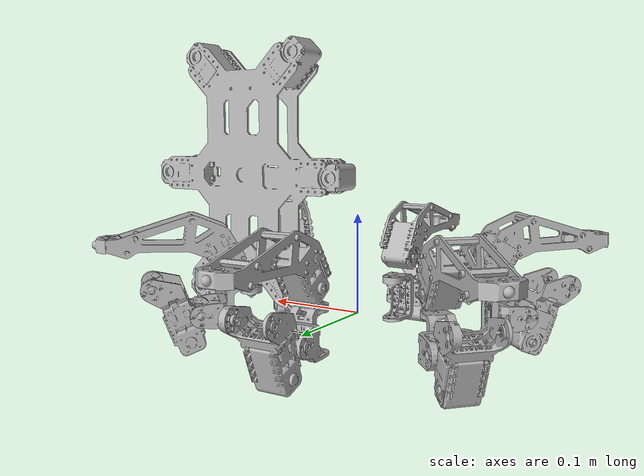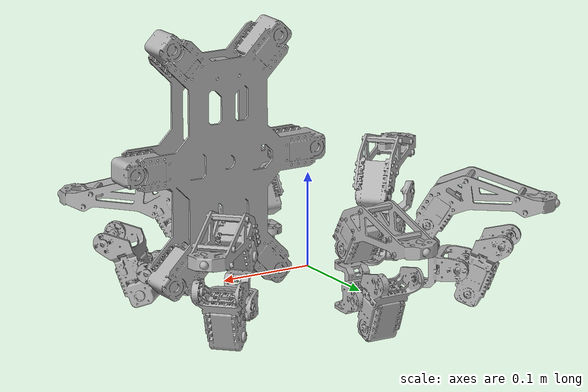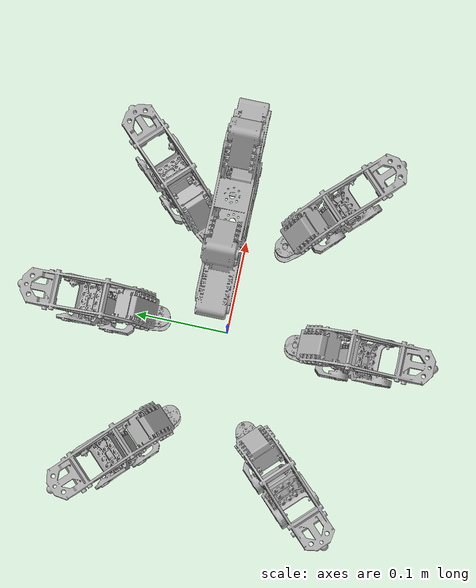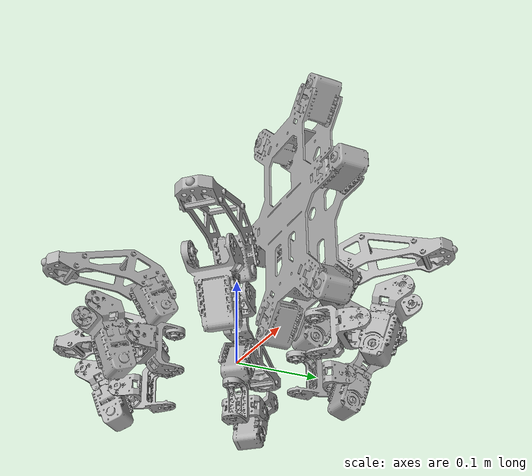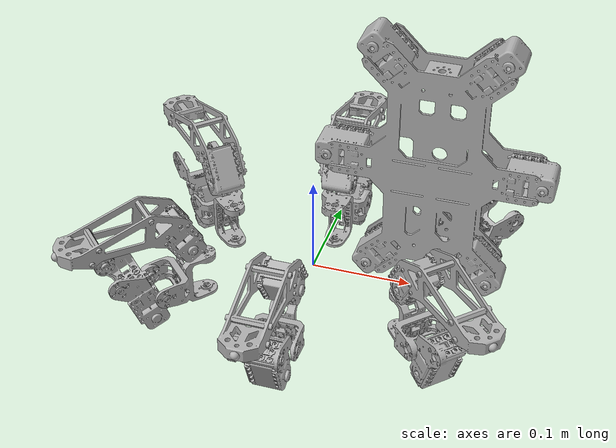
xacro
<?xml version="1.0" encoding="UTF-8" ?>

<robot xmlns:xacro="http://ros.org/wiki/xacro" name="PhantomX">

	<!-- parameters -->
	<xacro:property name="pi" value="3.1415926535897931" />
	<xacro:property name="body_length_x" value="0.250" />
	<xacro:property name="body_length_y" value="0.125" />
	<xacro:property name="coxa_length" value="0.052" />
	<xacro:property name="femur_length" value="0.065" />
	<xacro:property name="tibia_length" value="0.133" />

	<link name="base_link" />

    <joint name="base_joint" type="fixed">
        <parent link="base_link" />
        <child link="body_link" />
        <origin xyz="0.0 0.0 0.0" rpy="0.0 0.0 0.0" />
    </joint>

	<link name="body_link">
			<visual>
	  			<origin	xyz="0.0 0.0 0.0" rpy="0.0 0.0 0.0" />
      			<geometry>
        			<mesh filename="package://hexapod_description/meshes/body_phantomx.stl" scale="0.001 0.001 0.001"/>
      			</geometry>
				<material name="">
					<color rgba="0.7 0.7 0.7 1" />
				</material>
			</visual>
	</link>

	<!-- Head Pan and Tilt properties -->
	<joint name="head_pan_joint" type="revolute">
		<parent link="body_link"/>
		<child link="head_pan_link"/>
		<axis xyz="0.0 0.0 1.0" />
		<origin xyz="0.145 0.0 0.080" />
		<limit lower="-${3.14}" upper="${3.14}" effort="10000" velocity="100" />
	</joint>
	<link name="head_pan_link"/>

	<joint name="head_tilt_joint" type="revolute">
		<parent link="head_pan_link"/>
		<child link="head_tilt_link"/>
		<axis xyz="0.0 1.0 0.0" />
		<origin xyz="0.0 0.0 0.020" />
		<limit lower="-${3.14}" upper="${3.14}" effort="10000" velocity="100" />
	</joint>
	<link name="head_tilt_link"/>

	<!-- Camera properties -->
	<joint name="camera_rgb_joint" type="fixed">
		<parent link="head_tilt_link" />
		<child link="camera_rgb_optical_frame" />
		<origin xyz="0.0 0.0 0.0" rpy="${pi/2} ${pi} ${pi/2}" />
	</joint>
	<link name="camera_rgb_optical_frame" />

	<joint name="camera_depth_joint" type="fixed">
		<parent link="head_tilt_link" />
		<child link="camera_depth_optical_frame" />
		<origin xyz="0.0 0.0 0.0" rpy="${pi/2} ${pi} ${pi/2}" />
	</joint>
	<link name="camera_depth_optical_frame" />

<joint name="camera_depth_frame" type="fixed">
	<parent link="head_tilt_link" />
	<child link="camera_depth_frame_link" />
	<origin xyz="0.0 0.0 0.0" />
</joint>

<link name="camera_depth_frame_link" />

	<!-- IMU properties -->
	<joint name="imu_joint" type="fixed">
		<parent link="base_link" />
		<child link="imu_link" />
		<origin xyz="0.0 0.0 0.0" rpy="0.0 0.0 0.0" />
	</joint>
	<link name="imu_link" />

	<!-- Joint properties -->
	<xacro:property name="joint_lower_limit" value="-${3.14}" />
	<xacro:property name="joint_upper_limit" value="${3.14}" />
	<xacro:property name="joint_effort" value="10000" />
	<xacro:property name="joint_velocity" value="100" />

	<!-- Leg macro -->
	<xacro:macro name="leg" params="side position x y angle axis">

		<!-- leg position -->
		<joint name="leg_center_joint_${side}${position}" type="fixed">
			<origin xyz="${x} ${y} 0.0" rpy="0.0 0.0 0.0" />
			<parent link="body_link" />
			<child link="leg_center_${side}${position}" />
		</joint>

		<link name="leg_center_${side}${position}" />

		<!-- coxa -->
		<joint name="coxa_joint_${side}${position}" type="revolute">
			<origin xyz="0.0 0.0 0.0" rpy="0.0 0.0 ${angle}" />
			<parent link="leg_center_${side}${position}" />
			<child link="coxa_${side}${position}" />
			<axis xyz="0.0 0.0 ${-axis}" />
			<limit lower="${joint_lower_limit}" upper="${joint_upper_limit}" effort="${joint_effort}" velocity="${joint_velocity}" />
		</joint>
		<link name="coxa_${side}${position}">
			<visual>
				<origin xyz="0.0 0.0 0.0" rpy="0.0 0.0 0.0" />
      			<geometry>
        			<mesh filename="package://hexapod_description/meshes/coxa_phantomx.stl" scale="0.001 0.001 0.001"/>
      			</geometry>
				<material name="">
					<color rgba="0.7 0.7 0.7 1" />
				</material>
			</visual>
		</link>

		<!-- femur -->
		<joint name="femur_joint_${side}${position}" type="revolute">
			<origin xyz="${coxa_length} 0.0 0.0" rpy="-${pi/2} 0.0 0.0" />
			<parent link="coxa_${side}${position}" />
			<child link="femur_${side}${position}" />
			<axis xyz="0.0 0.0 ${axis}" />
			<limit lower="${joint_lower_limit}" upper="${joint_upper_limit}" effort="${joint_effort}" velocity="${joint_velocity}" />
		</joint>
		<link name="femur_${side}${position}">
			<visual>
				<origin xyz="0.0 0.0 0.0" rpy="0.0 0.0 0.0" />
      			<geometry>
        			<mesh filename="package://hexapod_description/meshes/femur_phantomx.stl" scale="0.001 0.001 0.001"/>
      			</geometry>
				<material name="">
					<color rgba="0.7 0.7 0.7 1" />
				</material>
			</visual>
		</link>

		<!-- tibia -->
		<joint name="tibia_joint_${side}${position}" type="revolute">
			<origin xyz="0.0 -${femur_length} 0.0" rpy="${pi} 0.0 0.0" />
			<parent link="femur_${side}${position}" />
			<child link="tibia_${side}${position}" />
			<axis xyz="0.0 0.0 ${axis}" />
			<limit lower="${joint_lower_limit}" upper="${joint_upper_limit}" effort="${joint_effort}" velocity="${joint_velocity}" />
		</joint>
		<link name="tibia_${side}${position}">
			<visual>
				<origin xyz="0.0 0.0 0.0" rpy="0.0 0.0 0.0" />
      			<geometry>
        			<mesh filename="package://hexapod_description/meshes/tibia_phantomx.stl" scale="0.001 0.001 0.001"/>
      			</geometry>
				<material name="">
					<color rgba="0.7 0.7 0.7 1" />
				</material>
			</visual>
		</link>

	</xacro:macro>

<!-- Build robot model -->
	<xacro:leg side="R" position="R" x="-0.120" y="-0.060" angle="-${pi*3/4}" axis="1" />
	<xacro:leg side="R" position="M" x="0.0" y="-0.100" angle="-${pi/2}" axis="1" />
	<xacro:leg side="R" position="F" x="0.120" y="-0.060" angle="-${pi/4}" axis="1" />

	<xacro:leg side="L" position="R" x="-0.120" y="0.060" angle="${pi*3/4}" axis="-1" />
	<xacro:leg side="L" position="M" x="0.0" y="0.100" angle="${pi/2}" axis="-1" />
	<xacro:leg side="L" position="F" x="0.120" y="0.060" angle="${pi/4}" axis="-1" />

</robot>
